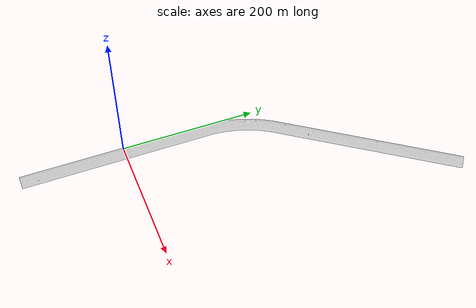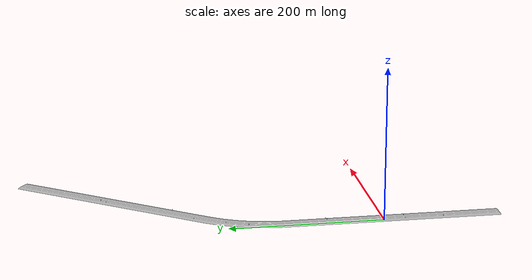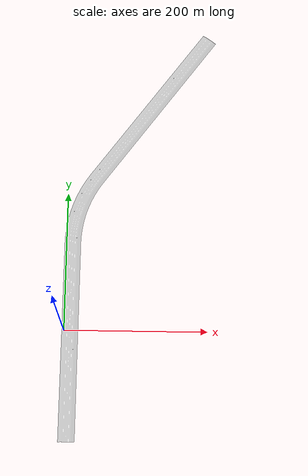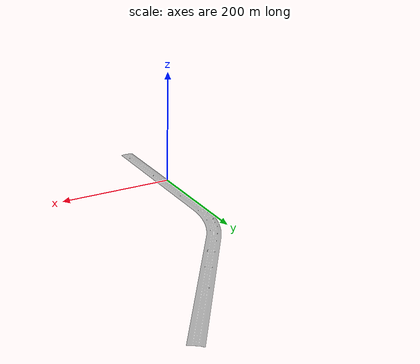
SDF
<?xml version="1.0" ?>
<sdf version="1.6">
  <model name="provinciale_weg">
    <static>true</static>
    <link name="link">
      <collision name="collision">
        <geometry>
          <mesh>
            <uri>model://provinciale_weg/meshes/model.dae</uri>
          </mesh>
        </geometry>
      </collision>
      <visual name="visual">
        <geometry>
          <mesh>
            <uri>model://provinciale_weg/meshes/model.dae</uri>
          </mesh>
        </geometry>
      </visual>
    </link>
  </model>
</sdf>
